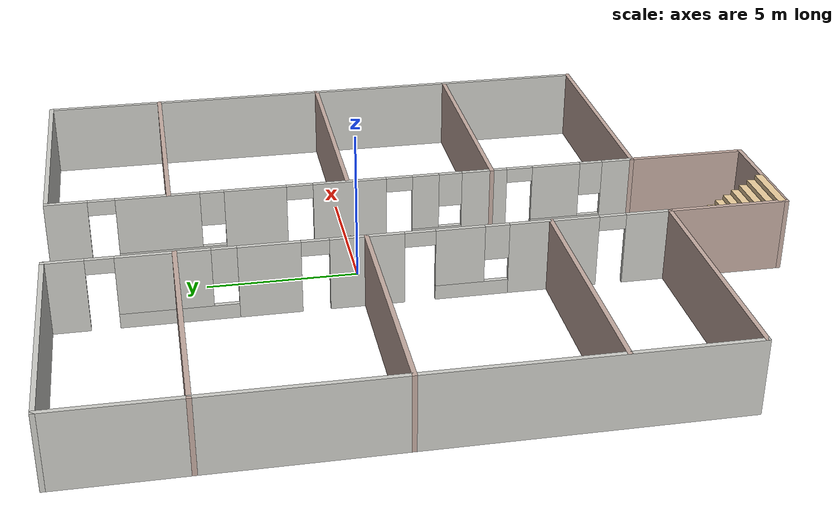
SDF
<?xml version='1.0'?>
<sdf version='1.7'>
  <model name='Untitled'>
    <pose>0 -2 0 0 -0 0</pose>
    <link name='Stairs_0'>
      <visual name='Stairs_0_Visual_0'>
        <pose>-1 -8.13333 0.083333 0 -0 0</pose>
        <geometry>
          <box>
            <size>2 0.266667 0.166667</size>
          </box>
        </geometry>
        <material>
          <script>
            <uri>file://media/materials/scripts/gazebo.material</uri>
            <name>Gazebo/Grey</name>
          </script>
          <ambient>0.921569 0.807843 0.615686 1</ambient>
        </material>
        <meta>
          <layer>0</layer>
        </meta>
      </visual>
      <collision name='Stairs_0_Collision_0'>
        <geometry>
          <box>
            <size>2 0.266667 0.166667</size>
          </box>
        </geometry>
        <pose>-1 -8.13333 0.083333 0 -0 0</pose>
      </collision>
      <visual name='Stairs_0_Visual_1'>
        <pose>-1 -8.4 0.25 0 -0 0</pose>
        <geometry>
          <box>
            <size>2 0.266667 0.166667</size>
          </box>
        </geometry>
        <material>
          <script>
            <uri>file://media/materials/scripts/gazebo.material</uri>
            <name>Gazebo/Grey</name>
          </script>
          <ambient>0.921569 0.807843 0.615686 1</ambient>
        </material>
        <meta>
          <layer>0</layer>
        </meta>
      </visual>
      <collision name='Stairs_0_Collision_1'>
        <geometry>
          <box>
            <size>2 0.266667 0.166667</size>
          </box>
        </geometry>
        <pose>-1 -8.4 0.25 0 -0 0</pose>
      </collision>
      <visual name='Stairs_0_Visual_2'>
        <pose>-1 -8.66667 0.416667 0 -0 0</pose>
        <geometry>
          <box>
            <size>2 0.266667 0.166667</size>
          </box>
        </geometry>
        <material>
          <script>
            <uri>file://media/materials/scripts/gazebo.material</uri>
            <name>Gazebo/Grey</name>
          </script>
          <ambient>0.921569 0.807843 0.615686 1</ambient>
        </material>
        <meta>
          <layer>0</layer>
        </meta>
      </visual>
      <collision name='Stairs_0_Collision_2'>
        <geometry>
          <box>
            <size>2 0.266667 0.166667</size>
          </box>
        </geometry>
        <pose>-1 -8.66667 0.416667 0 -0 0</pose>
      </collision>
      <visual name='Stairs_0_Visual_3'>
        <pose>-1 -8.93333 0.583333 0 -0 0</pose>
        <geometry>
          <box>
            <size>2 0.266667 0.166667</size>
          </box>
        </geometry>
        <material>
          <script>
            <uri>file://media/materials/scripts/gazebo.material</uri>
            <name>Gazebo/Grey</name>
          </script>
          <ambient>0.921569 0.807843 0.615686 1</ambient>
        </material>
        <meta>
          <layer>0</layer>
        </meta>
      </visual>
      <collision name='Stairs_0_Collision_3'>
        <geometry>
          <box>
            <size>2 0.266667 0.166667</size>
          </box>
        </geometry>
        <pose>-1 -8.93333 0.583333 0 -0 0</pose>
      </collision>
      <visual name='Stairs_0_Visual_4'>
        <pose>-1 -9.2 0.75 0 -0 0</pose>
        <geometry>
          <box>
            <size>2 0.266667 0.166667</size>
          </box>
        </geometry>
        <material>
          <script>
            <uri>file://media/materials/scripts/gazebo.material</uri>
            <name>Gazebo/Grey</name>
          </script>
          <ambient>0.921569 0.807843 0.615686 1</ambient>
        </material>
        <meta>
          <layer>0</layer>
        </meta>
      </visual>
      <collision name='Stairs_0_Collision_4'>
        <geometry>
          <box>
            <size>2 0.266667 0.166667</size>
          </box>
        </geometry>
        <pose>-1 -9.2 0.75 0 -0 0</pose>
      </collision>
      <visual name='Stairs_0_Visual_5'>
        <pose>-1 -9.46667 0.916667 0 -0 0</pose>
        <geometry>
          <box>
            <size>2 0.266667 0.166667</size>
          </box>
        </geometry>
        <material>
          <script>
            <uri>file://media/materials/scripts/gazebo.material</uri>
            <name>Gazebo/Grey</name>
          </script>
          <ambient>0.921569 0.807843 0.615686 1</ambient>
        </material>
        <meta>
          <layer>0</layer>
        </meta>
      </visual>
      <collision name='Stairs_0_Collision_5'>
        <geometry>
          <box>
            <size>2 0.266667 0.166667</size>
          </box>
        </geometry>
        <pose>-1 -9.46667 0.916667 0 -0 0</pose>
      </collision>
      <visual name='Stairs_0_Visual_6'>
        <pose>-1 -9.73333 1.08333 0 -0 0</pose>
        <geometry>
          <box>
            <size>2 0.266667 0.166667</size>
          </box>
        </geometry>
        <material>
          <script>
            <uri>file://media/materials/scripts/gazebo.material</uri>
            <name>Gazebo/Grey</name>
          </script>
          <ambient>0.921569 0.807843 0.615686 1</ambient>
        </material>
        <meta>
          <layer>0</layer>
        </meta>
      </visual>
      <collision name='Stairs_0_Collision_6'>
        <geometry>
          <box>
            <size>2 0.266667 0.166667</size>
          </box>
        </geometry>
        <pose>-1 -9.73333 1.08333 0 -0 0</pose>
      </collision>
      <visual name='Stairs_0_Visual_7'>
        <pose>-1 -10 1.25 0 -0 0</pose>
        <geometry>
          <box>
            <size>2 0.266667 0.166667</size>
          </box>
        </geometry>
        <material>
          <script>
            <uri>file://media/materials/scripts/gazebo.material</uri>
            <name>Gazebo/Grey</name>
          </script>
          <ambient>0.921569 0.807843 0.615686 1</ambient>
        </material>
        <meta>
          <layer>0</layer>
        </meta>
      </visual>
      <collision name='Stairs_0_Collision_7'>
        <geometry>
          <box>
            <size>2 0.266667 0.166667</size>
          </box>
        </geometry>
        <pose>-1 -10 1.25 0 -0 0</pose>
      </collision>
      <visual name='Stairs_0_Visual_8'>
        <pose>-1 -10.2667 1.41667 0 -0 0</pose>
        <geometry>
          <box>
            <size>2 0.266667 0.166667</size>
          </box>
        </geometry>
        <material>
          <script>
            <uri>file://media/materials/scripts/gazebo.material</uri>
            <name>Gazebo/Grey</name>
          </script>
          <ambient>0.921569 0.807843 0.615686 1</ambient>
        </material>
        <meta>
          <layer>0</layer>
        </meta>
      </visual>
      <collision name='Stairs_0_Collision_8'>
        <geometry>
          <box>
            <size>2 0.266667 0.166667</size>
          </box>
        </geometry>
        <pose>-1 -10.2667 1.41667 0 -0 0</pose>
      </collision>
      <visual name='Stairs_0_Visual_9'>
        <pose>-1 -10.5333 1.58333 0 -0 0</pose>
        <geometry>
          <box>
            <size>2 0.266667 0.166667</size>
          </box>
        </geometry>
        <material>
          <script>
            <uri>file://media/materials/scripts/gazebo.material</uri>
            <name>Gazebo/Grey</name>
          </script>
          <ambient>0.921569 0.807843 0.615686 1</ambient>
        </material>
        <meta>
          <layer>0</layer>
        </meta>
      </visual>
      <collision name='Stairs_0_Collision_9'>
        <geometry>
          <box>
            <size>2 0.266667 0.166667</size>
          </box>
        </geometry>
        <pose>-1 -10.5333 1.58333 0 -0 0</pose>
      </collision>
      <visual name='Stairs_0_Visual_10'>
        <pose>-1 -10.8 1.75 0 -0 0</pose>
        <geometry>
          <box>
            <size>2 0.266667 0.166667</size>
          </box>
        </geometry>
        <material>
          <script>
            <uri>file://media/materials/scripts/gazebo.material</uri>
            <name>Gazebo/Grey</name>
          </script>
          <ambient>0.921569 0.807843 0.615686 1</ambient>
        </material>
        <meta>
          <layer>0</layer>
        </meta>
      </visual>
      <collision name='Stairs_0_Collision_10'>
        <geometry>
          <box>
            <size>2 0.266667 0.166667</size>
          </box>
        </geometry>
        <pose>-1 -10.8 1.75 0 -0 0</pose>
      </collision>
      <visual name='Stairs_0_Visual_11'>
        <pose>-1 -11.0667 1.91667 0 -0 0</pose>
        <geometry>
          <box>
            <size>2 0.266667 0.166667</size>
          </box>
        </geometry>
        <material>
          <script>
            <uri>file://media/materials/scripts/gazebo.material</uri>
            <name>Gazebo/Grey</name>
          </script>
          <ambient>0.921569 0.807843 0.615686 1</ambient>
        </material>
        <meta>
          <layer>0</layer>
        </meta>
      </visual>
      <collision name='Stairs_0_Collision_11'>
        <geometry>
          <box>
            <size>2 0.266667 0.166667</size>
          </box>
        </geometry>
        <pose>-1 -11.0667 1.91667 0 -0 0</pose>
      </collision>
      <visual name='Stairs_0_Visual_12'>
        <pose>-1 -11.3333 2.08333 0 -0 0</pose>
        <geometry>
          <box>
            <size>2 0.266667 0.166667</size>
          </box>
        </geometry>
        <material>
          <script>
            <uri>file://media/materials/scripts/gazebo.material</uri>
            <name>Gazebo/Grey</name>
          </script>
          <ambient>0.921569 0.807843 0.615686 1</ambient>
        </material>
        <meta>
          <layer>0</layer>
        </meta>
      </visual>
      <collision name='Stairs_0_Collision_12'>
        <geometry>
          <box>
            <size>2 0.266667 0.166667</size>
          </box>
        </geometry>
        <pose>-1 -11.3333 2.08333 0 -0 0</pose>
      </collision>
      <visual name='Stairs_0_Visual_13'>
        <pose>-1 -11.6 2.25 0 -0 0</pose>
        <geometry>
          <box>
            <size>2 0.266667 0.166667</size>
          </box>
        </geometry>
        <material>
          <script>
            <uri>file://media/materials/scripts/gazebo.material</uri>
            <name>Gazebo/Grey</name>
          </script>
          <ambient>0.921569 0.807843 0.615686 1</ambient>
        </material>
        <meta>
          <layer>0</layer>
        </meta>
      </visual>
      <collision name='Stairs_0_Collision_13'>
        <geometry>
          <box>
            <size>2 0.266667 0.166667</size>
          </box>
        </geometry>
        <pose>-1 -11.6 2.25 0 -0 0</pose>
      </collision>
      <visual name='Stairs_0_Visual_14'>
        <pose>-1 -11.8667 2.41667 0 -0 0</pose>
        <geometry>
          <box>
            <size>2 0.266667 0.166667</size>
          </box>
        </geometry>
        <material>
          <script>
            <uri>file://media/materials/scripts/gazebo.material</uri>
            <name>Gazebo/Grey</name>
          </script>
          <ambient>0.921569 0.807843 0.615686 1</ambient>
        </material>
        <meta>
          <layer>0</layer>
        </meta>
      </visual>
      <collision name='Stairs_0_Collision_14'>
        <geometry>
          <box>
            <size>2 0.266667 0.166667</size>
          </box>
        </geometry>
        <pose>-1 -11.8667 2.41667 0 -0 0</pose>
      </collision>
    </link>
    <link name='Wall_1'>
      <pose>-2 2 0 0 -0 1.5708</pose>
      <visual name='Wall_1_Visual_0'>
        <pose>-9.28949 0 1.25 0 -0 0</pose>
        <geometry>
          <box>
            <size>1.57102 0.15 2.5</size>
          </box>
        </geometry>
        <material>
          <script>
            <uri>file://media/materials/scripts/gazebo.material</uri>
            <name>Gazebo/CeilingTiled</name>
          </script>
          <ambient>0.760784 0.662745 0.627451 1</ambient>
        </material>
        <meta>
          <layer>0</layer>
        </meta>
      </visual>
      <collision name='Wall_1_Collision_0'>
        <geometry>
          <box>
            <size>1.57102 0.15 2.5</size>
          </box>
        </geometry>
        <pose>-9.28949 0 1.25 0 -0 0</pose>
      </collision>
      <visual name='Wall_1_Visual_1'>
        <pose>-6.11402 0 1.25 0 -0 0</pose>
        <geometry>
          <box>
            <size>2.97992 0.15 2.5</size>
          </box>
        </geometry>
        <material>
          <script>
            <uri>file://media/materials/scripts/gazebo.material</uri>
            <name>Gazebo/CeilingTiled</name>
          </script>
          <ambient>0.760784 0.662745 0.627451 1</ambient>
        </material>
        <meta>
          <layer>0</layer>
        </meta>
      </visual>
      <collision name='Wall_1_Collision_1'>
        <geometry>
          <box>
            <size>2.97992 0.15 2.5</size>
          </box>
        </geometry>
        <pose>-6.11402 0 1.25 0 -0 0</pose>
      </collision>
      <visual name='Wall_1_Visual_2'>
        <pose>-0.015834 0 1.25 0 -0 0</pose>
        <geometry>
          <box>
            <size>2.39973 0.15 2.5</size>
          </box>
        </geometry>
        <material>
          <script>
            <uri>file://media/materials/scripts/gazebo.material</uri>
            <name>Gazebo/CeilingTiled</name>
          </script>
          <ambient>0.760784 0.662745 0.627451 1</ambient>
        </material>
        <meta>
          <layer>0</layer>
        </meta>
      </visual>
      <collision name='Wall_1_Collision_2'>
        <geometry>
          <box>
            <size>2.39973 0.15 2.5</size>
          </box>
        </geometry>
        <pose>-0.015834 0 1.25 0 -0 0</pose>
      </collision>
      <visual name='Wall_1_Visual_3'>
        <pose>3.08247 0 1.25 0 -0 0</pose>
        <geometry>
          <box>
            <size>1.99688 0.15 2.5</size>
          </box>
        </geometry>
        <material>
          <script>
            <uri>file://media/materials/scripts/gazebo.material</uri>
            <name>Gazebo/CeilingTiled</name>
          </script>
          <ambient>0.760784 0.662745 0.627451 1</ambient>
        </material>
        <meta>
          <layer>0</layer>
        </meta>
      </visual>
      <collision name='Wall_1_Collision_3'>
        <geometry>
          <box>
            <size>1.99688 0.15 2.5</size>
          </box>
        </geometry>
        <pose>3.08247 0 1.25 0 -0 0</pose>
      </collision>
      <visual name='Wall_1_Visual_4'>
        <pose>9.40714 0 1.25 0 -0 0</pose>
        <geometry>
          <box>
            <size>1.33572 0.15 2.5</size>
          </box>
        </geometry>
        <material>
          <script>
            <uri>file://media/materials/scripts/gazebo.material</uri>
            <name>Gazebo/CeilingTiled</name>
          </script>
          <ambient>0.760784 0.662745 0.627451 1</ambient>
        </material>
        <meta>
          <layer>0</layer>
        </meta>
      </visual>
      <collision name='Wall_1_Collision_4'>
        <geometry>
          <box>
            <size>1.33572 0.15 2.5</size>
          </box>
        </geometry>
        <pose>9.40714 0 1.25 0 -0 0</pose>
      </collision>
      <visual name='Wall_1_Visual_5'>
        <pose>-3.42105 0 0.25 0 -0 0</pose>
        <geometry>
          <box>
            <size>2.40603 0.15 0.5</size>
          </box>
        </geometry>
        <material>
          <script>
            <uri>file://media/materials/scripts/gazebo.material</uri>
            <name>Gazebo/CeilingTiled</name>
          </script>
          <ambient>0.760784 0.662745 0.627451 1</ambient>
        </material>
        <meta>
          <layer>0</layer>
        </meta>
      </visual>
      <collision name='Wall_1_Collision_5'>
        <geometry>
          <box>
            <size>2.40603 0.15 0.5</size>
          </box>
        </geometry>
        <pose>-3.42105 0 0.25 0 -0 0</pose>
      </collision>
      <visual name='Wall_1_Visual_6'>
        <pose>5.96009 0 0.25 0 -0 0</pose>
        <geometry>
          <box>
            <size>3.75838 0.15 0.5</size>
          </box>
        </geometry>
        <material>
          <script>
            <uri>file://media/materials/scripts/gazebo.material</uri>
            <name>Gazebo/CeilingTiled</name>
          </script>
          <ambient>0.760784 0.662745 0.627451 1</ambient>
        </material>
        <meta>
          <layer>0</layer>
        </meta>
      </visual>
      <collision name='Wall_1_Collision_6'>
        <geometry>
          <box>
            <size>3.75838 0.15 0.5</size>
          </box>
        </geometry>
        <pose>5.96009 0 0.25 0 -0 0</pose>
      </collision>
      <visual name='Wall_1_Visual_7'>
        <pose>-3.02105 0 1.5 0 -0 0</pose>
        <geometry>
          <box>
            <size>1.60603 0.15 2</size>
          </box>
        </geometry>
        <material>
          <script>
            <uri>file://media/materials/scripts/gazebo.material</uri>
            <name>Gazebo/CeilingTiled</name>
          </script>
          <ambient>0.760784 0.662745 0.627451 1</ambient>
        </material>
        <meta>
          <layer>0</layer>
        </meta>
      </visual>
      <collision name='Wall_1_Collision_7'>
        <geometry>
          <box>
            <size>1.60603 0.15 2</size>
          </box>
        </geometry>
        <pose>-3.02105 0 1.5 0 -0 0</pose>
      </collision>
      <visual name='Wall_1_Visual_8'>
        <pose>-3.02105 0 1.5 0 -0 0</pose>
        <geometry>
          <box>
            <size>1.60603 0.15 2</size>
          </box>
        </geometry>
        <material>
          <script>
            <uri>file://media/materials/scripts/gazebo.material</uri>
            <name>Gazebo/CeilingTiled</name>
          </script>
          <ambient>0.760784 0.662745 0.627451 1</ambient>
        </material>
        <meta>
          <layer>0</layer>
        </meta>
      </visual>
      <collision name='Wall_1_Collision_8'>
        <geometry>
          <box>
            <size>1.60603 0.15 2</size>
          </box>
        </geometry>
        <pose>-3.02105 0 1.5 0 -0 0</pose>
      </collision>
      <visual name='Wall_1_Visual_9'>
        <pose>6.3601 0 1.5 0 -0 0</pose>
        <geometry>
          <box>
            <size>2.95838 0.15 2</size>
          </box>
        </geometry>
        <material>
          <script>
            <uri>file://media/materials/scripts/gazebo.material</uri>
            <name>Gazebo/CeilingTiled</name>
          </script>
          <ambient>0.760784 0.662745 0.627451 1</ambient>
        </material>
        <meta>
          <layer>0</layer>
        </meta>
      </visual>
      <collision name='Wall_1_Collision_9'>
        <geometry>
          <box>
            <size>2.95838 0.15 2</size>
          </box>
        </geometry>
        <pose>6.3601 0 1.5 0 -0 0</pose>
      </collision>
      <visual name='Wall_1_Visual_10'>
        <pose>-4.22406 0 1.9 0 -0 0</pose>
        <geometry>
          <box>
            <size>0.8 0.15 1.2</size>
          </box>
        </geometry>
        <material>
          <script>
            <uri>file://media/materials/scripts/gazebo.material</uri>
            <name>Gazebo/CeilingTiled</name>
          </script>
          <ambient>0.760784 0.662745 0.627451 1</ambient>
        </material>
        <meta>
          <layer>0</layer>
        </meta>
      </visual>
      <collision name='Wall_1_Collision_10'>
        <geometry>
          <box>
            <size>0.8 0.15 1.2</size>
          </box>
        </geometry>
        <pose>-4.22406 0 1.9 0 -0 0</pose>
      </collision>
      <visual name='Wall_1_Visual_11'>
        <pose>4.48091 0 1.9 0 -0 0</pose>
        <geometry>
          <box>
            <size>0.8 0.15 1.2</size>
          </box>
        </geometry>
        <material>
          <script>
            <uri>file://media/materials/scripts/gazebo.material</uri>
            <name>Gazebo/CeilingTiled</name>
          </script>
          <ambient>0.760784 0.662745 0.627451 1</ambient>
        </material>
        <meta>
          <layer>0</layer>
        </meta>
      </visual>
      <collision name='Wall_1_Collision_11'>
        <geometry>
          <box>
            <size>0.8 0.15 1.2</size>
          </box>
        </geometry>
        <pose>4.48091 0 1.9 0 -0 0</pose>
      </collision>
      <visual name='Wall_1_Visual_12'>
        <pose>-8.05398 0 2.25 0 -0 0</pose>
        <geometry>
          <box>
            <size>0.9 0.15 0.5</size>
          </box>
        </geometry>
        <material>
          <script>
            <uri>file://media/materials/scripts/gazebo.material</uri>
            <name>Gazebo/CeilingTiled</name>
          </script>
          <ambient>0.760784 0.662745 0.627451 1</ambient>
        </material>
        <meta>
          <layer>0</layer>
        </meta>
      </visual>
      <collision name='Wall_1_Collision_12'>
        <geometry>
          <box>
            <size>0.9 0.15 0.5</size>
          </box>
        </geometry>
        <pose>-8.05398 0 2.25 0 -0 0</pose>
      </collision>
      <visual name='Wall_1_Visual_13'>
        <pose>1.63403 0 2.25 0 -0 0</pose>
        <geometry>
          <box>
            <size>0.9 0.15 0.5</size>
          </box>
        </geometry>
        <material>
          <script>
            <uri>file://media/materials/scripts/gazebo.material</uri>
            <name>Gazebo/CeilingTiled</name>
          </script>
          <ambient>0.760784 0.662745 0.627451 1</ambient>
        </material>
        <meta>
          <layer>0</layer>
        </meta>
      </visual>
      <collision name='Wall_1_Collision_13'>
        <geometry>
          <box>
            <size>0.9 0.15 0.5</size>
          </box>
        </geometry>
        <pose>1.63403 0 2.25 0 -0 0</pose>
      </collision>
      <visual name='Wall_1_Visual_14'>
        <pose>-1.71687 0 2.25 0 -0 0</pose>
        <geometry>
          <box>
            <size>1.00233 0.15 0.5</size>
          </box>
        </geometry>
        <material>
          <script>
            <uri>file://media/materials/scripts/gazebo.material</uri>
            <name>Gazebo/CeilingTiled</name>
          </script>
          <ambient>0.760784 0.662745 0.627451 1</ambient>
        </material>
        <meta>
          <layer>0</layer>
        </meta>
      </visual>
      <collision name='Wall_1_Collision_14'>
        <geometry>
          <box>
            <size>1.00233 0.15 0.5</size>
          </box>
        </geometry>
        <pose>-1.71687 0 2.25 0 -0 0</pose>
      </collision>
      <visual name='Wall_1_Visual_15'>
        <pose>-1.71687 0 2.25 0 -0 0</pose>
        <geometry>
          <box>
            <size>1.00233 0.15 0.5</size>
          </box>
        </geometry>
        <material>
          <script>
            <uri>file://media/materials/scripts/gazebo.material</uri>
            <name>Gazebo/CeilingTiled</name>
          </script>
          <ambient>0.760784 0.662745 0.627451 1</ambient>
        </material>
        <meta>
          <layer>0</layer>
        </meta>
      </visual>
      <collision name='Wall_1_Collision_15'>
        <geometry>
          <box>
            <size>1.00233 0.15 0.5</size>
          </box>
        </geometry>
        <pose>-1.71687 0 2.25 0 -0 0</pose>
      </collision>
      <visual name='Wall_1_Visual_16'>
        <pose>8.28928 0 2.25 0 -0 0</pose>
        <geometry>
          <box>
            <size>0.9 0.15 0.5</size>
          </box>
        </geometry>
        <material>
          <script>
            <uri>file://media/materials/scripts/gazebo.material</uri>
            <name>Gazebo/CeilingTiled</name>
          </script>
          <ambient>0.760784 0.662745 0.627451 1</ambient>
        </material>
        <meta>
          <layer>0</layer>
        </meta>
      </visual>
      <collision name='Wall_1_Collision_16'>
        <geometry>
          <box>
            <size>0.9 0.15 0.5</size>
          </box>
        </geometry>
        <pose>8.28928 0 2.25 0 -0 0</pose>
      </collision>
    </link>
    <link name='Wall_11'>
      <collision name='Wall_11_Collision'>
        <geometry>
          <box>
            <size>8.15 0.15 2.5</size>
          </box>
        </geometry>
        <pose>0 0 1.25 0 -0 0</pose>
      </collision>
      <visual name='Wall_11_Visual'>
        <pose>0 0 1.25 0 -0 0</pose>
        <geometry>
          <box>
            <size>8.15 0.15 2.5</size>
          </box>
        </geometry>
        <material>
          <script>
            <uri>file://media/materials/scripts/gazebo.material</uri>
            <name>Gazebo/CeilingTiled</name>
          </script>
          <ambient>0.760784 0.662745 0.627451 1</ambient>
        </material>
        <meta>
          <layer>0</layer>
        </meta>
      </visual>
      <pose>6 12 0 0 -0 0</pose>
    </link>
    <link name='Wall_12'>
      <collision name='Wall_12_Collision'>
        <geometry>
          <box>
            <size>20.15 0.15 2.5</size>
          </box>
        </geometry>
        <pose>0 0 1.25 0 -0 0</pose>
      </collision>
      <visual name='Wall_12_Visual'>
        <pose>0 0 1.25 0 -0 0</pose>
        <geometry>
          <box>
            <size>20.15 0.15 2.5</size>
          </box>
        </geometry>
        <material>
          <script>
            <uri>file://media/materials/scripts/gazebo.material</uri>
            <name>Gazebo/CeilingTiled</name>
          </script>
          <ambient>0.760784 0.662745 0.627451 1</ambient>
        </material>
        <meta>
          <layer>0</layer>
        </meta>
      </visual>
      <pose>10 2 0 0 -0 -1.5708</pose>
    </link>
    <link name='Wall_13'>
      <collision name='Wall_13_Collision'>
        <geometry>
          <box>
            <size>8.15 0.15 2.5</size>
          </box>
        </geometry>
        <pose>0 0 1.25 0 -0 0</pose>
      </collision>
      <visual name='Wall_13_Visual'>
        <pose>0 0 1.25 0 -0 0</pose>
        <geometry>
          <box>
            <size>8.15 0.15 2.5</size>
          </box>
        </geometry>
        <material>
          <script>
            <uri>file://media/materials/scripts/gazebo.material</uri>
            <name>Gazebo/Grey</name>
          </script>
          <ambient>0.760784 0.662745 0.627451 1</ambient>
        </material>
        <meta>
          <layer>0</layer>
        </meta>
      </visual>
      <pose>6 -8 0 0 -0 3.14159</pose>
    </link>
    <link name='Wall_15'>
      <collision name='Wall_15_Collision'>
        <geometry>
          <box>
            <size>8.15 0.15 2.5</size>
          </box>
        </geometry>
        <pose>0 0 1.25 0 -0 0</pose>
      </collision>
      <visual name='Wall_15_Visual'>
        <pose>0 0 1.25 0 -0 0</pose>
        <geometry>
          <box>
            <size>8.15 0.15 2.5</size>
          </box>
        </geometry>
        <material>
          <script>
            <uri>file://media/materials/scripts/gazebo.material</uri>
            <name>Gazebo/Grey</name>
          </script>
          <ambient>0.760784 0.662745 0.627451 1</ambient>
        </material>
        <meta>
          <layer>0</layer>
        </meta>
      </visual>
      <pose>-6 8 0 0 -0 0</pose>
    </link>
    <link name='Wall_17'>
      <collision name='Wall_17_Collision'>
        <geometry>
          <box>
            <size>8.15 0.15 2.5</size>
          </box>
        </geometry>
        <pose>0 0 1.25 0 -0 0</pose>
      </collision>
      <visual name='Wall_17_Visual'>
        <pose>0 0 1.25 0 -0 0</pose>
        <geometry>
          <box>
            <size>8.15 0.15 2.5</size>
          </box>
        </geometry>
        <material>
          <script>
            <uri>file://media/materials/scripts/gazebo.material</uri>
            <name>Gazebo/Grey</name>
          </script>
          <ambient>0.760784 0.662745 0.627451 1</ambient>
        </material>
        <meta>
          <layer>0</layer>
        </meta>
      </visual>
      <pose>-6 2 0 0 -0 0</pose>
    </link>
    <link name='Wall_19'>
      <collision name='Wall_19_Collision'>
        <geometry>
          <box>
            <size>8.15 0.15 2.5</size>
          </box>
        </geometry>
        <pose>0 0 1.25 0 -0 0</pose>
      </collision>
      <visual name='Wall_19_Visual'>
        <pose>0 0 1.25 0 -0 0</pose>
        <geometry>
          <box>
            <size>8.15 0.15 2.5</size>
          </box>
        </geometry>
        <material>
          <script>
            <uri>file://media/materials/scripts/gazebo.material</uri>
            <name>Gazebo/Grey</name>
          </script>
          <ambient>0.760784 0.662745 0.627451 1</ambient>
        </material>
        <meta>
          <layer>0</layer>
        </meta>
      </visual>
      <pose>-6 -4 0 0 -0 0</pose>
    </link>
    <link name='Wall_23'>
      <collision name='Wall_23_Collision'>
        <geometry>
          <box>
            <size>8.15 0.15 2.5</size>
          </box>
        </geometry>
        <pose>0 0 1.25 0 -0 0</pose>
      </collision>
      <visual name='Wall_23_Visual'>
        <pose>0 0 1.25 0 -0 0</pose>
        <geometry>
          <box>
            <size>8.15 0.15 2.5</size>
          </box>
        </geometry>
        <material>
          <script>
            <uri>file://media/materials/scripts/gazebo.material</uri>
            <name>Gazebo/Grey</name>
          </script>
          <ambient>0.760784 0.662745 0.627451 1</ambient>
        </material>
        <meta>
          <layer>0</layer>
        </meta>
      </visual>
      <pose>6 8 0 0 -0 0</pose>
    </link>
    <link name='Wall_25'>
      <collision name='Wall_25_Collision'>
        <geometry>
          <box>
            <size>8.15 0.15 2.5</size>
          </box>
        </geometry>
        <pose>0 0 1.25 0 -0 0</pose>
      </collision>
      <visual name='Wall_25_Visual'>
        <pose>0 0 1.25 0 -0 0</pose>
        <geometry>
          <box>
            <size>8.15 0.15 2.5</size>
          </box>
        </geometry>
        <material>
          <script>
            <uri>file://media/materials/scripts/gazebo.material</uri>
            <name>Gazebo/Grey</name>
          </script>
          <ambient>0.760784 0.662745 0.627451 1</ambient>
        </material>
        <meta>
          <layer>0</layer>
        </meta>
      </visual>
      <pose>6 2 0 0 -0 0</pose>
    </link>
    <link name='Wall_27'>
      <collision name='Wall_27_Collision'>
        <geometry>
          <box>
            <size>8.15 0.15 2.5</size>
          </box>
        </geometry>
        <pose>0 0 1.25 0 -0 0</pose>
      </collision>
      <visual name='Wall_27_Visual'>
        <pose>0 0 1.25 0 -0 0</pose>
        <geometry>
          <box>
            <size>8.15 0.15 2.5</size>
          </box>
        </geometry>
        <material>
          <script>
            <uri>file://media/materials/scripts/gazebo.material</uri>
            <name>Gazebo/Grey</name>
          </script>
          <ambient>0.760784 0.662745 0.627451 1</ambient>
        </material>
        <meta>
          <layer>0</layer>
        </meta>
      </visual>
      <pose>6 -3 0 0 -0 0</pose>
    </link>
    <link name='Wall_3'>
      <pose>2 2 0 0 -0 1.5708</pose>
      <visual name='Wall_3_Visual_0'>
        <pose>-9.50051 0 1.25 0 -0 0</pose>
        <geometry>
          <box>
            <size>1.14898 0.15 2.5</size>
          </box>
        </geometry>
        <material>
          <script>
            <uri>file://media/materials/scripts/gazebo.material</uri>
            <name>Gazebo/CeilingTiled</name>
          </script>
          <ambient>0.760784 0.662745 0.627451 1</ambient>
        </material>
        <meta>
          <layer>0</layer>
        </meta>
      </visual>
      <collision name='Wall_3_Collision_0'>
        <geometry>
          <box>
            <size>1.14898 0.15 2.5</size>
          </box>
        </geometry>
        <pose>-9.50051 0 1.25 0 -0 0</pose>
      </collision>
      <visual name='Wall_3_Visual_1'>
        <pose>-4.74094 0 1.25 0 -0 0</pose>
        <geometry>
          <box>
            <size>1.58231 0.15 2.5</size>
          </box>
        </geometry>
        <material>
          <script>
            <uri>file://media/materials/scripts/gazebo.material</uri>
            <name>Gazebo/CeilingTiled</name>
          </script>
          <ambient>0.760784 0.662745 0.627451 1</ambient>
        </material>
        <meta>
          <layer>0</layer>
        </meta>
      </visual>
      <collision name='Wall_3_Collision_1'>
        <geometry>
          <box>
            <size>1.58231 0.15 2.5</size>
          </box>
        </geometry>
        <pose>-4.74094 0 1.25 0 -0 0</pose>
      </collision>
      <visual name='Wall_3_Visual_2'>
        <pose>-0.06771 0 1.25 0 -0 0</pose>
        <geometry>
          <box>
            <size>2.5047 0.15 2.5</size>
          </box>
        </geometry>
        <material>
          <script>
            <uri>file://media/materials/scripts/gazebo.material</uri>
            <name>Gazebo/CeilingTiled</name>
          </script>
          <ambient>0.760784 0.662745 0.627451 1</ambient>
        </material>
        <meta>
          <layer>0</layer>
        </meta>
      </visual>
      <collision name='Wall_3_Collision_2'>
        <geometry>
          <box>
            <size>2.5047 0.15 2.5</size>
          </box>
        </geometry>
        <pose>-0.06771 0 1.25 0 -0 0</pose>
      </collision>
      <visual name='Wall_3_Visual_3'>
        <pose>3.12986 0 1.25 0 -0 0</pose>
        <geometry>
          <box>
            <size>2.09043 0.15 2.5</size>
          </box>
        </geometry>
        <material>
          <script>
            <uri>file://media/materials/scripts/gazebo.material</uri>
            <name>Gazebo/CeilingTiled</name>
          </script>
          <ambient>0.760784 0.662745 0.627451 1</ambient>
        </material>
        <meta>
          <layer>0</layer>
        </meta>
      </visual>
      <collision name='Wall_3_Collision_3'>
        <geometry>
          <box>
            <size>2.09043 0.15 2.5</size>
          </box>
        </geometry>
        <pose>3.12986 0 1.25 0 -0 0</pose>
      </collision>
      <visual name='Wall_3_Visual_4'>
        <pose>9.36845 0 1.25 0 -0 0</pose>
        <geometry>
          <box>
            <size>1.4131 0.15 2.5</size>
          </box>
        </geometry>
        <material>
          <script>
            <uri>file://media/materials/scripts/gazebo.material</uri>
            <name>Gazebo/CeilingTiled</name>
          </script>
          <ambient>0.760784 0.662745 0.627451 1</ambient>
        </material>
        <meta>
          <layer>0</layer>
        </meta>
      </visual>
      <collision name='Wall_3_Collision_4'>
        <geometry>
          <box>
            <size>1.4131 0.15 2.5</size>
          </box>
        </geometry>
        <pose>9.36845 0 1.25 0 -0 0</pose>
      </collision>
      <visual name='Wall_3_Visual_5'>
        <pose>-7.67906 0 0.25 0 -0 0</pose>
        <geometry>
          <box>
            <size>2.49392 0.15 0.5</size>
          </box>
        </geometry>
        <material>
          <script>
            <uri>file://media/materials/scripts/gazebo.material</uri>
            <name>Gazebo/CeilingTiled</name>
          </script>
          <ambient>0.760784 0.662745 0.627451 1</ambient>
        </material>
        <meta>
          <layer>0</layer>
        </meta>
      </visual>
      <collision name='Wall_3_Collision_5'>
        <geometry>
          <box>
            <size>2.49392 0.15 0.5</size>
          </box>
        </geometry>
        <pose>-7.67906 0 0.25 0 -0 0</pose>
      </collision>
      <visual name='Wall_3_Visual_6'>
        <pose>-3.08493 0 0.25 0 -0 0</pose>
        <geometry>
          <box>
            <size>1.72973 0.15 0.5</size>
          </box>
        </geometry>
        <material>
          <script>
            <uri>file://media/materials/scripts/gazebo.material</uri>
            <name>Gazebo/CeilingTiled</name>
          </script>
          <ambient>0.760784 0.662745 0.627451 1</ambient>
        </material>
        <meta>
          <layer>0</layer>
        </meta>
      </visual>
      <collision name='Wall_3_Collision_6'>
        <geometry>
          <box>
            <size>1.72973 0.15 0.5</size>
          </box>
        </geometry>
        <pose>-3.08493 0 0.25 0 -0 0</pose>
      </collision>
      <visual name='Wall_3_Visual_7'>
        <pose>5.96849 0 0.25 0 -0 0</pose>
        <geometry>
          <box>
            <size>3.58683 0.15 0.5</size>
          </box>
        </geometry>
        <material>
          <script>
            <uri>file://media/materials/scripts/gazebo.material</uri>
            <name>Gazebo/CeilingTiled</name>
          </script>
          <ambient>0.760784 0.662745 0.627451 1</ambient>
        </material>
        <meta>
          <layer>0</layer>
        </meta>
      </visual>
      <collision name='Wall_3_Collision_7'>
        <geometry>
          <box>
            <size>3.58683 0.15 0.5</size>
          </box>
        </geometry>
        <pose>5.96849 0 0.25 0 -0 0</pose>
      </collision>
      <visual name='Wall_3_Visual_8'>
        <pose>-7.27906 0 1.5 0 -0 0</pose>
        <geometry>
          <box>
            <size>1.69392 0.15 2</size>
          </box>
        </geometry>
        <material>
          <script>
            <uri>file://media/materials/scripts/gazebo.material</uri>
            <name>Gazebo/CeilingTiled</name>
          </script>
          <ambient>0.760784 0.662745 0.627451 1</ambient>
        </material>
        <meta>
          <layer>0</layer>
        </meta>
      </visual>
      <collision name='Wall_3_Collision_8'>
        <geometry>
          <box>
            <size>1.69392 0.15 2</size>
          </box>
        </geometry>
        <pose>-7.27906 0 1.5 0 -0 0</pose>
      </collision>
      <visual name='Wall_3_Visual_9'>
        <pose>-7.27906 0 1.5 0 -0 0</pose>
        <geometry>
          <box>
            <size>1.69392 0.15 2</size>
          </box>
        </geometry>
        <material>
          <script>
            <uri>file://media/materials/scripts/gazebo.material</uri>
            <name>Gazebo/CeilingTiled</name>
          </script>
          <ambient>0.760784 0.662745 0.627451 1</ambient>
        </material>
        <meta>
          <layer>0</layer>
        </meta>
      </visual>
      <collision name='Wall_3_Collision_9'>
        <geometry>
          <box>
            <size>1.69392 0.15 2</size>
          </box>
        </geometry>
        <pose>-7.27906 0 1.5 0 -0 0</pose>
      </collision>
      <visual name='Wall_3_Visual_10'>
        <pose>-2.68492 0 1.5 0 -0 0</pose>
        <geometry>
          <box>
            <size>0.92973 0.15 2</size>
          </box>
        </geometry>
        <material>
          <script>
            <uri>file://media/materials/scripts/gazebo.material</uri>
            <name>Gazebo/CeilingTiled</name>
          </script>
          <ambient>0.760784 0.662745 0.627451 1</ambient>
        </material>
        <meta>
          <layer>0</layer>
        </meta>
      </visual>
      <collision name='Wall_3_Collision_10'>
        <geometry>
          <box>
            <size>0.92973 0.15 2</size>
          </box>
        </geometry>
        <pose>-2.68492 0 1.5 0 -0 0</pose>
      </collision>
      <visual name='Wall_3_Visual_11'>
        <pose>-2.68492 0 1.5 0 -0 0</pose>
        <geometry>
          <box>
            <size>0.92973 0.15 2</size>
          </box>
        </geometry>
        <material>
          <script>
            <uri>file://media/materials/scripts/gazebo.material</uri>
            <name>Gazebo/CeilingTiled</name>
          </script>
          <ambient>0.760784 0.662745 0.627451 1</ambient>
        </material>
        <meta>
          <layer>0</layer>
        </meta>
      </visual>
      <collision name='Wall_3_Collision_11'>
        <geometry>
          <box>
            <size>0.92973 0.15 2</size>
          </box>
        </geometry>
        <pose>-2.68492 0 1.5 0 -0 0</pose>
      </collision>
      <visual name='Wall_3_Visual_12'>
        <pose>6.36849 0 1.5 0 -0 0</pose>
        <geometry>
          <box>
            <size>2.78683 0.15 2</size>
          </box>
        </geometry>
        <material>
          <script>
            <uri>file://media/materials/scripts/gazebo.material</uri>
            <name>Gazebo/CeilingTiled</name>
          </script>
          <ambient>0.760784 0.662745 0.627451 1</ambient>
        </material>
        <meta>
          <layer>0</layer>
        </meta>
      </visual>
      <collision name='Wall_3_Collision_12'>
        <geometry>
          <box>
            <size>2.78683 0.15 2</size>
          </box>
        </geometry>
        <pose>6.36849 0 1.5 0 -0 0</pose>
      </collision>
      <visual name='Wall_3_Visual_13'>
        <pose>-8.52602 0 1.9 0 -0 0</pose>
        <geometry>
          <box>
            <size>0.8 0.15 1.2</size>
          </box>
        </geometry>
        <material>
          <script>
            <uri>file://media/materials/scripts/gazebo.material</uri>
            <name>Gazebo/CeilingTiled</name>
          </script>
          <ambient>0.760784 0.662745 0.627451 1</ambient>
        </material>
        <meta>
          <layer>0</layer>
        </meta>
      </visual>
      <collision name='Wall_3_Collision_13'>
        <geometry>
          <box>
            <size>0.8 0.15 1.2</size>
          </box>
        </geometry>
        <pose>-8.52602 0 1.9 0 -0 0</pose>
      </collision>
      <visual name='Wall_3_Visual_14'>
        <pose>-3.54979 0 1.9 0 -0 0</pose>
        <geometry>
          <box>
            <size>0.8 0.15 1.2</size>
          </box>
        </geometry>
        <material>
          <script>
            <uri>file://media/materials/scripts/gazebo.material</uri>
            <name>Gazebo/CeilingTiled</name>
          </script>
          <ambient>0.760784 0.662745 0.627451 1</ambient>
        </material>
        <meta>
          <layer>0</layer>
        </meta>
      </visual>
      <collision name='Wall_3_Collision_14'>
        <geometry>
          <box>
            <size>0.8 0.15 1.2</size>
          </box>
        </geometry>
        <pose>-3.54979 0 1.9 0 -0 0</pose>
      </collision>
      <visual name='Wall_3_Visual_15'>
        <pose>4.57507 0 1.9 0 -0 0</pose>
        <geometry>
          <box>
            <size>0.8 0.15 1.2</size>
          </box>
        </geometry>
        <material>
          <script>
            <uri>file://media/materials/scripts/gazebo.material</uri>
            <name>Gazebo/CeilingTiled</name>
          </script>
          <ambient>0.760784 0.662745 0.627451 1</ambient>
        </material>
        <meta>
          <layer>0</layer>
        </meta>
      </visual>
      <collision name='Wall_3_Collision_15'>
        <geometry>
          <box>
            <size>0.8 0.15 1.2</size>
          </box>
        </geometry>
        <pose>4.57507 0 1.9 0 -0 0</pose>
      </collision>
      <visual name='Wall_3_Visual_16'>
        <pose>1.63464 0 2.25 0 -0 0</pose>
        <geometry>
          <box>
            <size>0.9 0.15 0.5</size>
          </box>
        </geometry>
        <material>
          <script>
            <uri>file://media/materials/scripts/gazebo.material</uri>
            <name>Gazebo/CeilingTiled</name>
          </script>
          <ambient>0.760784 0.662745 0.627451 1</ambient>
        </material>
        <meta>
          <layer>0</layer>
        </meta>
      </visual>
      <collision name='Wall_3_Collision_16'>
        <geometry>
          <box>
            <size>0.9 0.15 0.5</size>
          </box>
        </geometry>
        <pose>1.63464 0 2.25 0 -0 0</pose>
      </collision>
      <visual name='Wall_3_Visual_17'>
        <pose>-5.9821 0 2.25 0 -0 0</pose>
        <geometry>
          <box>
            <size>0.9 0.15 0.5</size>
          </box>
        </geometry>
        <material>
          <script>
            <uri>file://media/materials/scripts/gazebo.material</uri>
            <name>Gazebo/CeilingTiled</name>
          </script>
          <ambient>0.760784 0.662745 0.627451 1</ambient>
        </material>
        <meta>
          <layer>0</layer>
        </meta>
      </visual>
      <collision name='Wall_3_Collision_17'>
        <geometry>
          <box>
            <size>0.9 0.15 0.5</size>
          </box>
        </geometry>
        <pose>-5.9821 0 2.25 0 -0 0</pose>
      </collision>
      <visual name='Wall_3_Visual_18'>
        <pose>-5.9821 0 2.25 0 -0 0</pose>
        <geometry>
          <box>
            <size>0.9 0.15 0.5</size>
          </box>
        </geometry>
        <material>
          <script>
            <uri>file://media/materials/scripts/gazebo.material</uri>
            <name>Gazebo/CeilingTiled</name>
          </script>
          <ambient>0.760784 0.662745 0.627451 1</ambient>
        </material>
        <meta>
          <layer>0</layer>
        </meta>
      </visual>
      <collision name='Wall_3_Collision_18'>
        <geometry>
          <box>
            <size>0.9 0.15 0.5</size>
          </box>
        </geometry>
        <pose>-5.9821 0 2.25 0 -0 0</pose>
      </collision>
      <visual name='Wall_3_Visual_19'>
        <pose>-1.77006 0 2.25 0 -0 0</pose>
        <geometry>
          <box>
            <size>0.9 0.15 0.5</size>
          </box>
        </geometry>
        <material>
          <script>
            <uri>file://media/materials/scripts/gazebo.material</uri>
            <name>Gazebo/CeilingTiled</name>
          </script>
          <ambient>0.760784 0.662745 0.627451 1</ambient>
        </material>
        <meta>
          <layer>0</layer>
        </meta>
      </visual>
      <collision name='Wall_3_Collision_19'>
        <geometry>
          <box>
            <size>0.9 0.15 0.5</size>
          </box>
        </geometry>
        <pose>-1.77006 0 2.25 0 -0 0</pose>
      </collision>
      <visual name='Wall_3_Visual_20'>
        <pose>-1.77006 0 2.25 0 -0 0</pose>
        <geometry>
          <box>
            <size>0.9 0.15 0.5</size>
          </box>
        </geometry>
        <material>
          <script>
            <uri>file://media/materials/scripts/gazebo.material</uri>
            <name>Gazebo/CeilingTiled</name>
          </script>
          <ambient>0.760784 0.662745 0.627451 1</ambient>
        </material>
        <meta>
          <layer>0</layer>
        </meta>
      </visual>
      <collision name='Wall_3_Collision_20'>
        <geometry>
          <box>
            <size>0.9 0.15 0.5</size>
          </box>
        </geometry>
        <pose>-1.77006 0 2.25 0 -0 0</pose>
      </collision>
      <visual name='Wall_3_Visual_21'>
        <pose>8.2119 0 2.25 0 -0 0</pose>
        <geometry>
          <box>
            <size>0.9 0.15 0.5</size>
          </box>
        </geometry>
        <material>
          <script>
            <uri>file://media/materials/scripts/gazebo.material</uri>
            <name>Gazebo/CeilingTiled</name>
          </script>
          <ambient>0.760784 0.662745 0.627451 1</ambient>
        </material>
        <meta>
          <layer>0</layer>
        </meta>
      </visual>
      <collision name='Wall_3_Collision_21'>
        <geometry>
          <box>
            <size>0.9 0.15 0.5</size>
          </box>
        </geometry>
        <pose>8.2119 0 2.25 0 -0 0</pose>
      </collision>
    </link>
    <link name='Wall_33'>
      <collision name='Wall_33_Collision'>
        <geometry>
          <box>
            <size>4.15 0.15 2.5</size>
          </box>
        </geometry>
        <pose>0 0 1.25 0 -0 0</pose>
      </collision>
      <visual name='Wall_33_Visual'>
        <pose>0 0 1.25 0 -0 0</pose>
        <geometry>
          <box>
            <size>4.15 0.15 2.5</size>
          </box>
        </geometry>
        <material>
          <script>
            <uri>file://media/materials/scripts/gazebo.material</uri>
            <name>Gazebo/Grey</name>
          </script>
          <ambient>0.760784 0.662745 0.627451 1</ambient>
        </material>
        <meta>
          <layer>0</layer>
        </meta>
      </visual>
      <pose>2 -10 0 0 -0 -1.5708</pose>
    </link>
    <link name='Wall_34'>
      <collision name='Wall_34_Collision'>
        <geometry>
          <box>
            <size>4.15 0.15 2.5</size>
          </box>
        </geometry>
        <pose>0 0 1.25 0 -0 0</pose>
      </collision>
      <visual name='Wall_34_Visual'>
        <pose>0 0 1.25 0 -0 0</pose>
        <geometry>
          <box>
            <size>4.15 0.15 2.5</size>
          </box>
        </geometry>
        <material>
          <script>
            <uri>file://media/materials/scripts/gazebo.material</uri>
            <name>Gazebo/Grey</name>
          </script>
          <ambient>0.760784 0.662745 0.627451 1</ambient>
        </material>
        <meta>
          <layer>0</layer>
        </meta>
      </visual>
      <pose>0 -12 0 0 -0 3.14159</pose>
    </link>
    <link name='Wall_35'>
      <collision name='Wall_35_Collision'>
        <geometry>
          <box>
            <size>4.15 0.15 2.5</size>
          </box>
        </geometry>
        <pose>0 0 1.25 0 -0 0</pose>
      </collision>
      <visual name='Wall_35_Visual'>
        <pose>0 0 1.25 0 -0 0</pose>
        <geometry>
          <box>
            <size>4.15 0.15 2.5</size>
          </box>
        </geometry>
        <material>
          <script>
            <uri>file://media/materials/scripts/gazebo.material</uri>
            <name>Gazebo/Grey</name>
          </script>
          <ambient>0.760784 0.662745 0.627451 1</ambient>
        </material>
        <meta>
          <layer>0</layer>
        </meta>
      </visual>
      <pose>-2 -10 0 0 -0 1.5708</pose>
    </link>
    <link name='Wall_7'>
      <collision name='Wall_7_Collision'>
        <geometry>
          <box>
            <size>8.15 0.15 2.5</size>
          </box>
        </geometry>
        <pose>0 0 1.25 0 -0 0</pose>
      </collision>
      <visual name='Wall_7_Visual'>
        <pose>0 0 1.25 0 -0 0</pose>
        <geometry>
          <box>
            <size>8.15 0.15 2.5</size>
          </box>
        </geometry>
        <material>
          <script>
            <uri>file://media/materials/scripts/gazebo.material</uri>
            <name>Gazebo/CeilingTiled</name>
          </script>
          <ambient>0.760784 0.662745 0.627451 1</ambient>
        </material>
        <meta>
          <layer>0</layer>
        </meta>
      </visual>
      <pose>-6 12 0 0 -0 3.14159</pose>
    </link>
    <link name='Wall_8'>
      <collision name='Wall_8_Collision'>
        <geometry>
          <box>
            <size>20.15 0.15 2.5</size>
          </box>
        </geometry>
        <pose>0 0 1.25 0 -0 0</pose>
      </collision>
      <visual name='Wall_8_Visual'>
        <pose>0 0 1.25 0 -0 0</pose>
        <geometry>
          <box>
            <size>20.15 0.15 2.5</size>
          </box>
        </geometry>
        <material>
          <script>
            <uri>file://media/materials/scripts/gazebo.material</uri>
            <name>Gazebo/CeilingTiled</name>
          </script>
          <ambient>0.760784 0.662745 0.627451 1</ambient>
        </material>
        <meta>
          <layer>0</layer>
        </meta>
      </visual>
      <pose>-10 2 0 0 -0 -1.5708</pose>
    </link>
    <link name='Wall_9'>
      <collision name='Wall_9_Collision'>
        <geometry>
          <box>
            <size>8.15 0.15 2.5</size>
          </box>
        </geometry>
        <pose>0 0 1.25 0 -0 0</pose>
      </collision>
      <visual name='Wall_9_Visual'>
        <pose>0 0 1.25 0 -0 0</pose>
        <geometry>
          <box>
            <size>8.15 0.15 2.5</size>
          </box>
        </geometry>
        <material>
          <script>
            <uri>file://media/materials/scripts/gazebo.material</uri>
            <name>Gazebo/Grey</name>
          </script>
          <ambient>0.760784 0.662745 0.627451 1</ambient>
        </material>
        <meta>
          <layer>0</layer>
        </meta>
      </visual>
      <pose>-6 -8 0 0 -0 0</pose>
    </link>
    <static>1</static>
  </model>
</sdf>
